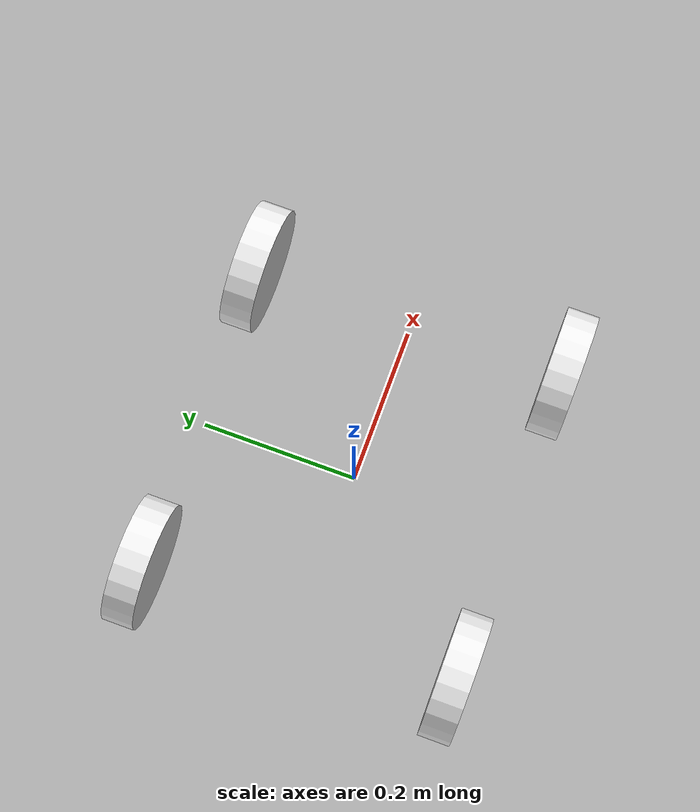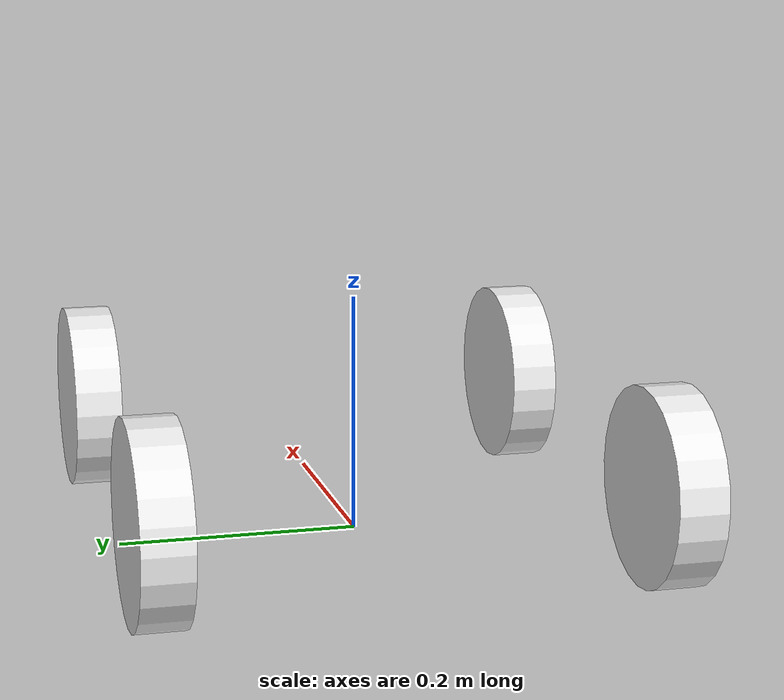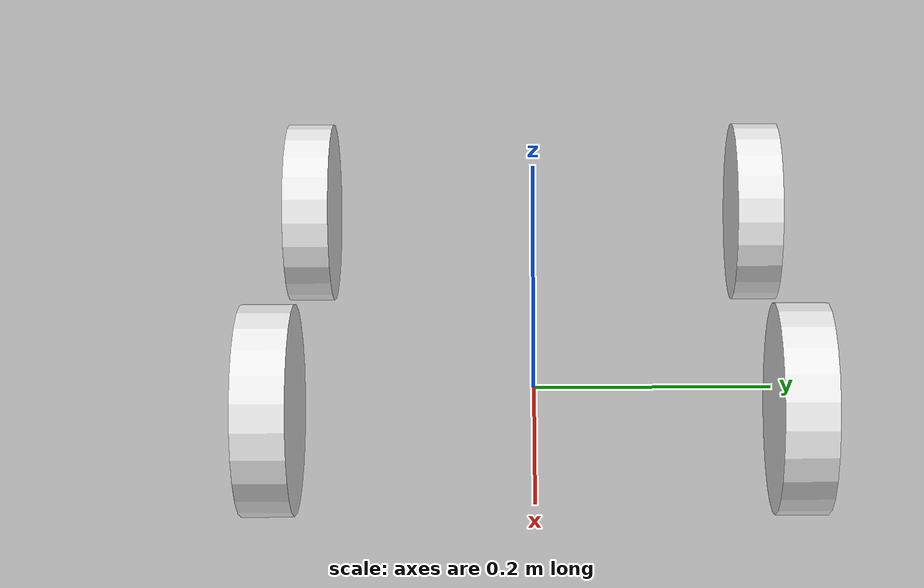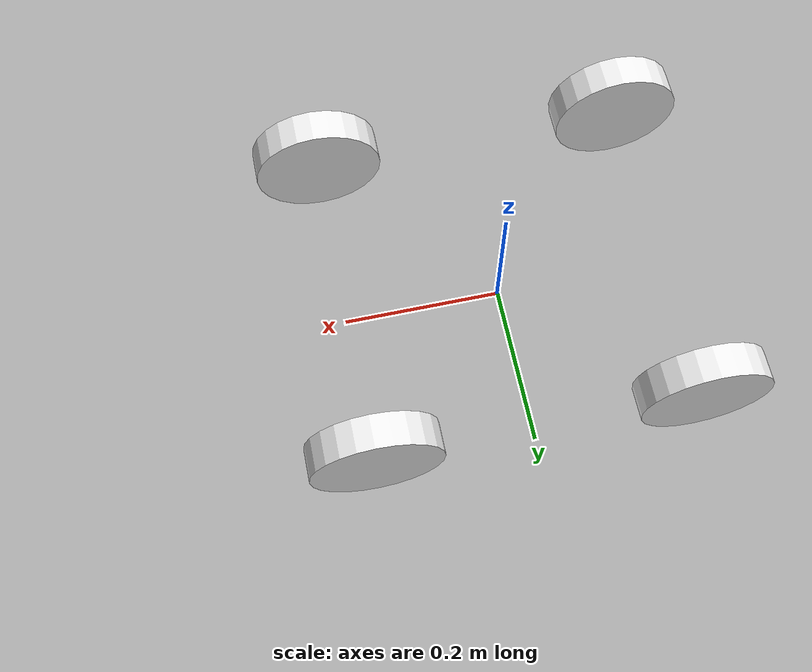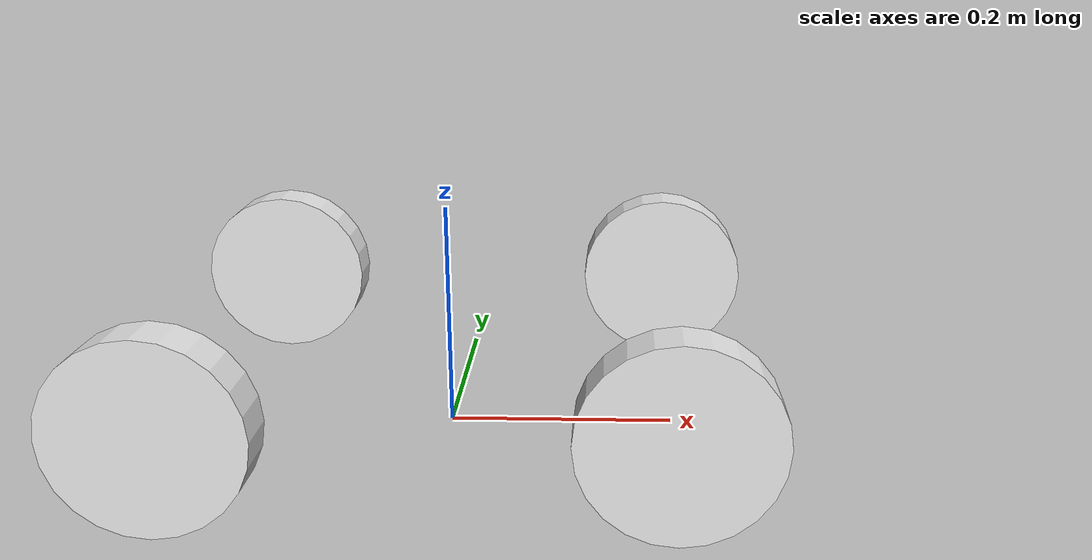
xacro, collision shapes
<?xml version="1.0"?>
<robot xmlns:xacro="http://www.ros.org/wiki/xacro"  name="robot">

    <xacro:include filename="robot_core.xacro"/>
    <xacro:include filename="ros2_control.urdf.xacro"/> <!--Uncomment to use low res mode-->
    <xacro:include filename="gazebo_control.xacro"/>

</robot>

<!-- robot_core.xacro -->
<robot xmlns:xacro="http://www.ros.org/wiki/xacro">

    <xacro:include filename="inertial_macros.xacro"/>

    <material name="white">
        <color rgba="0.5 0.5 0.5 1"/>
    </material>

    <material name="black">
		<color rgba="0 0 0 1"/>
    </material>

    <!-- BASE LINK -->

    <link name="base_link">

    </link>

	<!-- grabber servo -->
	<joint name="servo_g_joint" type="fixed">
		<parent link="left_ft_link"/>
		<child link="servo_g_link"/>
		<origin xyz="0.01 0.15 0.15" rpy="1.5707 -1.5707 0"/>
		<axis xyz="0 0 1"/>
	</joint>

	<link name="servo_g_link">
		<visual>
			<origin xyz="0 0 0.1" rpy="0.0 1.5707 0.0"/>
			<geometry>
				<mesh filename="package://holonomic/meshes/servomotor.stl" scale="0.0030 0.0030 0.0026"/>
			</geometry>
			<material name="white"/>
		</visual>

		<collision>
			<origin xyz="0 0 0.1"/>
			<geometry>
				<box size="0.0 0.0 0.0"/>
			</geometry>
		</collision>

		<xacro:inertial_box mass="0.2" x="0.5" y="0.5" z="0.03">
        	<origin xyz="0 0 0.1" rpy="0 0 0"/>
    	</xacro:inertial_box>
	</link>

	<!-- left ft slot -->
	<joint name="left_ft_joint" type="fixed">
		<parent link="base_link"/>
		<child link="left_ft_link"/>
		<origin xyz="0.185 0.225 0.134" rpy="1.5707 0 0"/>
		<axis xyz="0 0 1"/>
	</joint>

	<link name="left_ft_link">
		<visual>
			<origin xyz="0 0 0.1"/>
			<geometry>
				<mesh filename="package://holonomic/meshes/2020_AL-Profile.stl" scale="0.001 0.001 0.025"/>
			</geometry>
			<material name="white"/>
		</visual>

		<collision>
			<origin xyz="0 0 0.1"/>
			<geometry>
				<box size="0.0 0.0 0.0"/>
			</geometry>
		</collision>

		<xacro:inertial_box mass="0.2" x="0.5" y="0.5" z="0.03">
        	<origin xyz="0 0 0.1" rpy="0 0 0"/>
    	</xacro:inertial_box>
	</link>

	<!-- left grabber -->
	<joint name="grabber_joint" type="revolute">
		<parent link="base_link"/>
		<child link="grabber_link"/>
		<origin xyz="0.21 -0.001 0.18" rpy="0 0.21 0"/>
		<axis xyz="0 1 0"/>
		<limit lower="0.161" upper="1.5707" effort="10" velocity="0.5"/>
	</joint>

	<link name="grabber_link">
		<visual>
			<origin xyz="-0.02 0.001 -0.02"/>
			<geometry>
				<mesh filename="package://holonomic/meshes/2020_AL-Profile.stl" scale="0.001 0.001 0.035"/>
			</geometry>
			<material name="white"/>
		</visual>

		<collision>
			<origin xyz="0 0 0.1"/>
			<geometry>
				<box size="0.0 0.0 0.0"/>
			</geometry>
		</collision>

		<xacro:inertial_box mass="0.2" x="0.5" y="0.5" z="0.03">
        	<origin xyz="0 0 0.1" rpy="0 0 0"/>
    	</xacro:inertial_box>
	</link>

	<!-- left grabber -->
	<joint name="hook_joint" type="fixed">
		<parent link="grabber_link"/>
		<child link="hook_link"/>
		<origin xyz="0 0 0.3" rpy="0 1.622 0"/>
		<axis xyz="0 1 0"/>
		<limit lower="0.161" upper="1.5707" effort="10" velocity="0.5"/>
	</joint>

	<link name="hook_link">
		<visual>
			<origin xyz="-0.02 0.001 -0.02"/>
			<geometry>
				<mesh filename="package://holonomic/meshes/2020_AL-Profile.stl" scale="0.001 0.001 0.012"/>
			</geometry>
			<material name="white"/>
		</visual>

		<collision>
			<origin xyz="0 0 0.1"/>
			<geometry>
				<box size="0.0 0.0 0.0"/>
			</geometry>
		</collision>

		<xacro:inertial_box mass="0.2" x="0.5" y="0.5" z="0.03">
        	<origin xyz="0 0 0.1" rpy="0 0 0"/>
    	</xacro:inertial_box>
	</link>

	<!-- servo br -->
	<joint name="servo_br_joint" type="fixed">
		<parent link="base_link"/>
		<child link="servo_br_link"/>
		<origin xyz="-0.19717 0.0 0.1" rpy="${pi/2} ${-pi/2} 0"/>
		<axis xyz="0 0 1"/>
	</joint>

	<link name="servo_br_link">
		<visual>
			<origin xyz="0 0 0.1"/>
			<geometry>
				<mesh filename="package://holonomic/meshes/servomotor.stl" scale="0.0030 0.0030 0.0026"/>
			</geometry>
			<material name="white"/>
		</visual>

		<collision>
			<origin xyz="0 0 0.1"/>
			<geometry>
				<box size="0.0 0.0 0.0"/>
			</geometry>
		</collision>

		<xacro:inertial_box mass="0.2" x="0.5" y="0.5" z="0.03">
        	<origin xyz="0 0 0.1" rpy="0 0 0"/>
    	</xacro:inertial_box>
	</link>

	<!-- servo bl -->
	<joint name="servo_bl_joint" type="fixed">
		<parent link="base_link"/>
		<child link="servo_bl_link"/>
		<origin xyz="-0.19717 0.0 0.1" rpy="${-pi/2} ${-pi/2} 0"/>
		<axis xyz="0 0 1"/>
	</joint>

	<link name="servo_bl_link">
		<visual>
			<origin xyz="0 0 0.1"/>
			<geometry>
				<mesh filename="package://holonomic/meshes/servomotor.stl" scale="0.0030 0.0030 0.0026"/>
			</geometry>
			<material name="white"/>
		</visual>

		<collision>
			<origin xyz="0 0 0.1"/>
			<geometry>
				<box size="0.0 0.0 0.0"/>
			</geometry>
		</collision>

		<xacro:inertial_box mass="0.2" x="0.5" y="0.5" z="0.03">
        	<origin xyz="0 0 0.1" rpy="0 0 0"/>
    	</xacro:inertial_box>
	</link>

	<!-- servo fl -->
	<joint name="servo_fl_joint" type="fixed">
		<parent link="base_link"/>
		<child link="servo_fl_link"/>
		<origin xyz="0.19717 0.0 0.1" rpy="${-pi/2} ${-pi/2} 0"/>
		<axis xyz="0 0 1"/>
	</joint>

	<link name="servo_fl_link">
		<visual>
			<origin xyz="0 0 0.1"/>
			<geometry>
				<mesh filename="package://holonomic/meshes/servomotor.stl" scale="0.0030 0.0030 0.0026"/>
			</geometry>
			<material name="white"/>
		</visual>

		<collision>
			<origin xyz="0 0 0.1"/>
			<geometry>
				<box size="0.0 0.0 0.0"/>
			</geometry>
		</collision>

		<xacro:inertial_box mass="0.2" x="0.5" y="0.5" z="0.03">
        	<origin xyz="0 0 0.1" rpy="0 0 0"/>
    	</xacro:inertial_box>
	</link>

	<!-- WHEEL1 LINK -->
	<joint name="wheel1_joint" type="continuous">
		<parent link="base_link"/>
		<child link="wheel1_link"/>
		<origin xyz="0.19717 -0.20 0.08" rpy="${-pi/2} ${-pi/2} 0"/>
		<axis xyz="0 0 1"/>
	</joint>

	<link name="wheel1_link">
		<visual>
			<geometry>
				<mesh filename="package://holonomic/meshes/wheel.stl" scale="0.00172 0.00172 0.00095"/>
			</geometry>
		</visual>

		<collision>
			<geometry>
				<cylinder radius="0.08" length="0.04"/>
			</geometry>
		</collision>

		<xacro:inertial_cylinder mass="0.1" length="0.4" radius="0.8">
        	<origin xyz="0 0 0" rpy="0 0 0"/>
    	</xacro:inertial_cylinder>
	</link>

	<gazebo reference="wheel1_link">
        <material>Gazebo/White</material>
		<mu1 value="0.5"/>
		<mu2 value="0.5"/>
    </gazebo>

	<!-- WHEEL2 LINK -->
	<joint name="wheel2_joint" type="continuous">
		<parent link="base_link"/>
		<child link="wheel2_link"/>
		<origin xyz="-0.19717 -0.20 0.08" rpy="${-pi/2} ${-pi/2} 0"/>
		<axis xyz="0 0 -1"/>
	</joint>

	<link name="wheel2_link">
		<visual>
			<geometry>
				<mesh filename="package://holonomic/meshes/wheel.stl" scale="0.00172 0.00172 0.00095"/>
			</geometry>
		</visual>

		<collision>
			<geometry>
				<cylinder radius="0.08" length="0.04"/>
			</geometry>
		</collision>

		<xacro:inertial_cylinder mass="0.1" length="0.4" radius="0.8">
        	<origin xyz="0 0 0" rpy="0 0 0"/>
    	</xacro:inertial_cylinder>
	</link>

	<gazebo reference="wheel2_link">
        <material>Gazebo/White</material>
		<mu1 value="0.5"/>
		<mu2 value="0.5"/>
    </gazebo>

	<!-- WHEEL3 LINK -->
	<joint name="wheel3_joint" type="continuous">
		<parent link="base_link"/>
		<child link="wheel3_link"/>
		<origin xyz="0.19717 0.20 0.08" rpy="${pi/2} ${-pi/2} 0"/>
		<axis xyz="0 0 1"/>
	</joint>

	<link name="wheel3_link">
		<visual>
			<geometry>
				<mesh filename="package://holonomic/meshes/wheel.stl" scale="0.00172 0.00172 0.00095"/>
			</geometry>
		</visual>

		<collision>
			<geometry>
				<cylinder radius="0.08" length="0.04"/>
			</geometry>
		</collision>

		<xacro:inertial_cylinder mass="0.1" length="0.4" radius="0.8">
        	<origin xyz="0 0 0" rpy="0 0 0"/>
    	</xacro:inertial_cylinder>
	</link>

	<gazebo reference="wheel3_link">
        <material>Gazebo/White</material>
		<mu1 value="0.5"/>
		<mu2 value="0.5"/>
    </gazebo>

	<!-- WHEEL4 LINK -->
	<joint name="wheel4_joint" type="continuous">
		<parent link="base_link"/>
		<child link="wheel4_link"/>
		<origin xyz="-0.19717 0.20 0.08" rpy="${pi/2} ${-pi/2} 0"/>
		<axis xyz="0 0 -1"/>
	</joint>

	<link name="wheel4_link">
		<visual>
			<geometry>
				<mesh filename="package://holonomic/meshes/wheel.stl" scale="0.00172 0.00172 0.00095"/>
			</geometry>
		</visual>

		<collision>
			<geometry>
				<cylinder radius="0.08" length="0.04"/>
			</geometry>
		</collision>

		<xacro:inertial_cylinder mass="0.1" length="0.4" radius="0.8">
        	<origin xyz="0 0 0" rpy="0 0 0"/>
    	</xacro:inertial_cylinder>
	</link>

	<gazebo reference="wheel4_link">
        <material>Gazebo/White</material>
		<mu1 value="0.5"/>
		<mu2 value="0.5"/>
    </gazebo>

	<joint name="cam_ftt_joint" type="fixed">
		<parent link="base_link"/>
		<child link="cam_ftt_link"/>
		<origin xyz="0.148 0.21 0.35" rpy="${pi/2} ${-pi/2} 0"/>
		<axis xyz="0 0 -1"/>
	</joint>

	<link name="cam_ftt_link">
		<visual>
			<origin xyz="0 0 0.1"/>
			<geometry>
				<mesh filename="package://holonomic/meshes/2020_AL-Profile.stl" scale="0.001 0.001 0.022"/>
			</geometry>
			<material name="white"/>
		</visual>

		<collision>
			<origin xyz="0 0 0.1"/>
			<geometry>
				<box size="0.0 0.0 0.0"/>
			</geometry>
		</collision>

		<xacro:inertial_box mass="0.2" x="0.5" y="0.5" z="0.03">
        	<origin xyz="0 0 0.1" rpy="0 0 0"/>
    	</xacro:inertial_box>
	</link>

	<joint name="cam_1_joint" type="fixed">
		<parent link="base_link"/>
		<child link="cam_1_link"/>
		<origin xyz="0.148 -0.07 0.24" rpy="0 0 0"/>
		<axis xyz="0 0 -1"/>
	</joint>

	<link name="cam_1_link">
		<visual>
			<origin xyz="0 0 0.1" rpy="0 0.15 0"/>
			<geometry>
				<box size="0.03 0.03 0.03"/>
			</geometry>
			<material name="white"/>
		</visual>

		<collision>
			<origin xyz="0 0 0.1"/>
			<geometry>
				<box size="0.0 0.0 0.0"/>
			</geometry>
		</collision>

		<xacro:inertial_box mass="0.2" x="0.5" y="0.5" z="0.03">
        	<origin xyz="0 0 0.1" rpy="0 0 0"/>
    	</xacro:inertial_box>
	</link>

	<joint name="cam_2_joint" type="fixed">
		<parent link="base_link"/>
		<child link="cam_2_link"/>
		<origin xyz="0.148 0.07 0.24" rpy="0 0 0"/>
		<axis xyz="0 0 -10"/>
	</joint>

	<link name="cam_2_link">
		<visual>
			<origin xyz="0 0 0.1" rpy="0 0.70 0"/>
			<geometry>
				<box size="0.03 0.03 0.03"/>
			</geometry>
			<material name="white"/>
		</visual>

		<collision>
			<origin xyz="0 0 0.1"/>
			<geometry>
				<box size="0.0 0.0 0.0"/>
			</geometry>
		</collision>

		<xacro:inertial_box mass="0.2" x="0.5" y="0.5" z="0.03">
        	<origin xyz="0 0 0.1" rpy="0 0 0"/>
    	</xacro:inertial_box>
	</link>

	<joint name="cam_pole_1_link_joint" type="fixed">
		<parent link="base_link"/>
		<child link="cam_pole_1_link"/>
		<origin xyz="0.13 0.105 0.03" rpy="0 0 0"/>
		<axis xyz="0 0 -1"/>
	</joint>

	<link name="cam_pole_1_link">
		<visual>
			<origin xyz="0 0 0.1"/>
			<geometry>
				<mesh filename="package://holonomic/meshes/2020_AL-Profile.stl" scale="0.001 0.001 0.025"/>
			</geometry>
			<material name="white"/>
		</visual>

		<collision>
			<origin xyz="0 0 0.1"/>
			<geometry>
				<box size="0.0 0.0 0.0"/>
			</geometry>
		</collision>

		<xacro:inertial_box mass="0.2" x="0.5" y="0.5" z="0.03">
        	<origin xyz="0 0 0.1" rpy="0 0 0"/>
    	</xacro:inertial_box>
	</link>

	<joint name="cam_pole_2_link_joint" type="fixed">
		<parent link="base_link"/>
		<child link="cam_pole_2_link"/>
		<origin xyz="0.13 -0.125 0.03" rpy="0 0 0"/>
		<axis xyz="0 0 -1"/>
	</joint>

	<link name="cam_pole_2_link">
		<visual>
			<origin xyz="0 0 0.1"/>
			<geometry>
				<mesh filename="package://holonomic/meshes/2020_AL-Profile.stl" scale="0.001 0.001 0.025"/>
			</geometry>
			<material name="white"/>
		</visual>

		<collision>
			<origin xyz="0 0 0.1"/>
			<geometry>
				<box size="0.0 0.0 0.0"/>
			</geometry>
		</collision>

		<xacro:inertial_box mass="0.2" x="0.5" y="0.5" z="0.03">
        	<origin xyz="0 0 0.1" rpy="0 0 0"/>
    	</xacro:inertial_box>
	</link>

	<!-- left bt slot -->
	<joint name="left_bt_joint" type="fixed">
		<parent link="base_link"/>
		<child link="left_bt_link"/>
		<origin xyz="-0.205 0.225 0.134" rpy="${pi/2} 0 0"/>
		<axis xyz="0 0 1"/>
	</joint>

	<link name="left_bt_link">
		<visual>
			<origin xyz="0 0 0.1"/>
			<geometry>
				<mesh filename="package://holonomic/meshes/2020_AL-Profile.stl" scale="0.001 0.001 0.025"/>
			</geometry>
			<material name="white"/>
		</visual>

		<collision>
			<origin xyz="0 0 0.1"/>
			<geometry>
				<box size="0.0 0.0 0.0"/>
			</geometry>
		</collision>

		<xacro:inertial_box mass="0.2" x="0.5" y="0.5" z="0.03">
        	<origin xyz="0 0 0.1" rpy="0 0 0"/>
    	</xacro:inertial_box>
	</link>

	<!-- left ll slot -->
	<joint name="left_ll_joint" type="fixed">
		<parent link="base_link"/>
		<child link="left_ll_link"/>
		<origin xyz="-0.3 0.105 0.15" rpy="0 ${pi/2}  0"/>
		<axis xyz="0 0 1"/>
	</joint>

	<link name="left_ll_link">
		<visual>
			<origin xyz="0 0 0.1"/>
			<geometry>
				<mesh filename="package://holonomic/meshes/2020_AL-Profile.stl" scale="0.001 0.001 0.04"/>
			</geometry>
			<material name="white"/>
		</visual>

		<collision>
			<origin xyz="0 0 0.1"/>
			<geometry>
				<box size="0.0 0.0 0.0"/>
			</geometry>
		</collision>

		<xacro:inertial_box mass="0.2" x="0.5" y="0.5" z="0.03">
        	<origin xyz="0 0 0.1" rpy="0 0 0"/>
    	</xacro:inertial_box>
	</link>

	<!-- left lr slot -->
	<joint name="left_lr_joint" type="fixed">
		<parent link="base_link"/>
		<child link="left_lr_link"/>
		<origin xyz="-0.3 -0.125 0.15" rpy="0 ${pi/2}  0"/>
		<axis xyz="0 0 1"/>
	</joint>

	<link name="left_lr_link">
		<visual>
			<origin xyz="0 0 0.1"/>
			<geometry>
				<mesh filename="package://holonomic/meshes/2020_AL-Profile.stl" scale="0.001 0.001 0.04"/>
			</geometry>
			<material name="white"/>
		</visual>

		<collision>
			<origin xyz="0 0 0.1"/>
			<geometry>
				<box size="0.0 0.0 0.0"/>
			</geometry>
		</collision>

		<xacro:inertial_box mass="0.2" x="0.5" y="0.5" z="0.03">
        	<origin xyz="0 0 0.1" rpy="0 0 0"/>
    	</xacro:inertial_box>
	</link>

	<!-- servo fr -->
	<joint name="servo_fr_joint" type="fixed">
		<parent link="base_link"/>
		<child link="servo_fr_link"/>
		<origin xyz="0.19717 0.0 0.1" rpy="1.5707 -1.5707 0"/>
		<axis xyz="0 0 1"/>
	</joint>

	<link name="servo_fr_link">
		<visual>
			<origin xyz="0 0 0.1"/>
			<geometry>
				<mesh filename="package://holonomic/meshes/servomotor.stl" scale="0.0030 0.0030 0.0026"/>
			</geometry>
			<material name="white"/>
		</visual>

		<collision>
			<origin xyz="0 0 0.1"/>
			<geometry>
				<box size="0.0 0.0 0.0"/>
			</geometry>
		</collision>

		<xacro:inertial_box mass="0.2" x="0.5" y="0.5" z="0.03">
        	<origin xyz="0 0 0.1" rpy="0 0 0"/>
    	</xacro:inertial_box>
	</link>
</robot>
